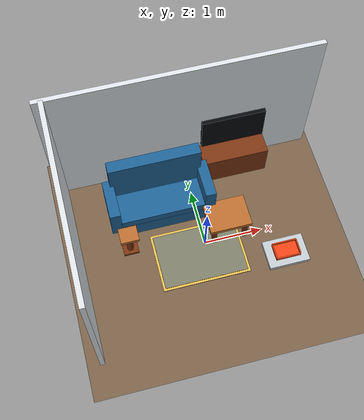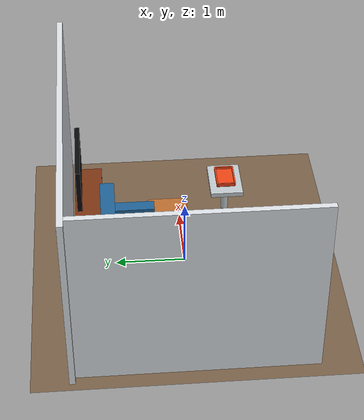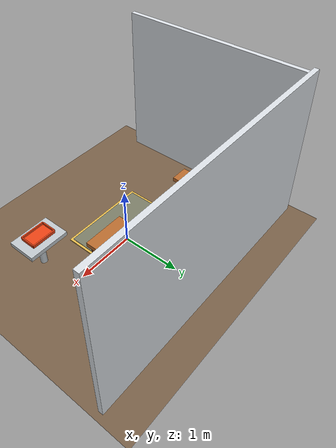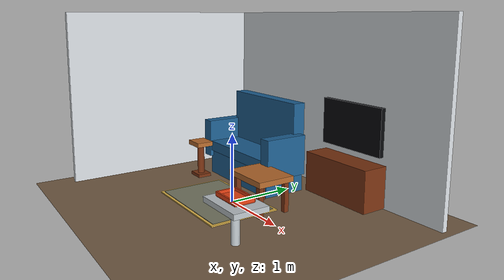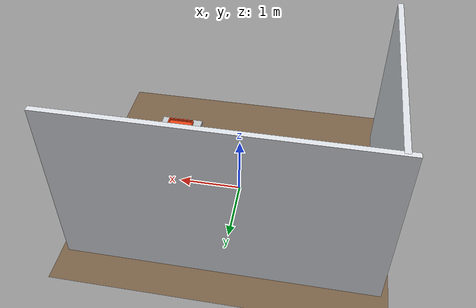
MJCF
<mujoco model="L2 living room region grounding">
  <compiler angle="radian"/>
  <option timestep="0.002" gravity="0 0 -9.81" integrator="implicitfast"/>
  <visual>
    <global offwidth="1280" offheight="960"/>
    <quality shadowsize="4096"/>
    <map znear="0.01" zfar="8"/>
  </visual>
  <default>
    <geom condim="4" friction="1.0 0.03 0.01"/>
    <joint damping="1"/>
  </default>
  <asset>
    <texture name="floor_tex" type="2d" builtin="checker"
             rgb1="0.52 0.42 0.31" rgb2="0.42 0.33 0.25"
             width="512" height="512"/>
    <material name="floor_mat" texture="floor_tex" texrepeat="8 8"
              reflectance="0.04"/>
    <texture name="rug_tex" type="2d" builtin="checker"
             rgb1="0.08 0.25 0.52" rgb2="0.88 0.72 0.28"
             mark="edge" markrgb="0.95 0.86 0.55"
             width="512" height="512"/>
    <material name="rug_mat" texture="rug_tex" texrepeat="6 5"
              reflectance="0.02"/>
    <material name="wood" rgba="0.48 0.20 0.07 1"/>
    <material name="wood_light" rgba="0.72 0.42 0.18 1"/>
    <material name="sofa" rgba="0.12 0.38 0.58 1"/>
    <material name="tray" rgba="0.92 0.26 0.08 1"/>
    <material name="metal" rgba="0.75 0.78 0.80 1"/>
    <material name="tv" rgba="0.025 0.03 0.04 1"/>
    <material name="wall" rgba="0.86 0.88 0.90 1"/>
    <material name="marker" rgba="0.15 0.85 0.30 0.25"/>
  </asset>
  <worldbody>
    <light name="key" pos="-1.5 -1.8 3.8" dir="0.3 0.4 -1"
           directional="true" diffuse="0.85 0.82 0.78"/>
    <light name="fill" pos="1.8 -0.8 2.8" dir="-0.4 0.2 -1"
           directional="true" diffuse="0.58 0.66 0.78"/>
    <light name="north_fill" pos="0 1.6 2.6" dir="0 -0.5 -1"
           diffuse="0.48 0.48 0.42"/>

    <geom name="room_floor" type="plane" size="2.4 2.2 0.05"
          material="floor_mat"/>
    <geom name="north_wall" type="box" pos="0 1.65 1.35"
          size="2.3 0.04 1.35" material="wall"/>
    <geom name="west_wall" type="box" pos="-2.15 0 1.35"
          size="0.04 1.65 1.35" material="wall"/>

    <!-- Clearly visible seating context. -->
    <body name="l2_sofa">
      <geom name="l2_sofa_base" type="box" pos="-0.62 0.82 0.22"
            size="0.78 0.34 0.22" material="sofa"/>
      <geom name="l2_sofa_seat" type="box" pos="-0.62 0.72 0.48"
            size="0.72 0.28 0.08" material="sofa"/>
      <geom name="l2_sofa_back" type="box" pos="-0.62 1.08 0.88"
            size="0.78 0.10 0.48" material="sofa"/>
      <geom name="l2_sofa_left_arm" type="box" pos="-1.43 0.76 0.60"
            size="0.09 0.34 0.30" material="sofa"/>
      <geom name="l2_sofa_right_arm" type="box" pos="0.19 0.76 0.60"
            size="0.09 0.34 0.30" material="sofa"/>
    </body>

    <!-- Geometry-only counterexample: large, planar rug near the sofa. -->
    <body name="l2_rug">
      <geom name="l2_rug_surface" type="box" pos="-0.15 -0.18 0.012"
            size="0.72 0.48 0.012" material="rug_mat"
            contype="0" conaffinity="0"/>
      <geom name="l2_rug_border" type="box" pos="-0.15 -0.18 0.008"
            size="0.76 0.52 0.008" rgba="0.90 0.73 0.30 1"
            contype="0" conaffinity="0"/>
    </body>

    <!-- Semantic-only counterexample: recognizable but undersized end table. -->
    <body name="l2_side_table">
      <geom name="l2_side_table_top" type="box" pos="-1.28 0.20 0.57"
            size="0.155 0.135 0.035" material="wood_light"/>
      <geom name="l2_side_table_leg" type="cylinder" pos="-1.28 0.20 0.29"
            size="0.055 0.25" material="wood"/>
      <geom name="l2_side_table_foot" type="box" pos="-1.28 0.20 0.045"
            size="0.13 0.11 0.025" material="wood"/>
    </body>

    <!-- Correct joint solution: clear coffee-table support patch. -->
    <body name="l2_coffee_table">
      <geom name="l2_coffee_table_top" type="box" pos="0.42 0.20 0.48"
            size="0.36 0.28 0.04" material="wood_light"/>
      <geom name="l2_coffee_leg_fl" type="box" pos="0.15 -0.01 0.23"
            size="0.035 0.035 0.23" material="wood"/>
      <geom name="l2_coffee_leg_fr" type="box" pos="0.69 -0.01 0.23"
            size="0.035 0.035 0.23" material="wood"/>
      <geom name="l2_coffee_leg_bl" type="box" pos="0.15 0.41 0.23"
            size="0.035 0.035 0.23" material="wood"/>
      <geom name="l2_coffee_leg_br" type="box" pos="0.69 0.41 0.23"
            size="0.035 0.035 0.23" material="wood"/>
    </body>

    <!-- Payload staging support is deliberately outside the candidate domain. -->
    <body name="l2_staging_table">
      <geom name="l2_staging_top" type="box" pos="1.16 -0.70 0.50"
            size="0.34 0.24 0.035" material="metal"/>
      <geom name="l2_staging_leg" type="cylinder" pos="1.16 -0.70 0.24"
            size="0.055 0.24" material="metal"/>
    </body>
    <body name="l2_refreshment_tray" pos="1.16 -0.70 0.565">
      <freejoint name="l2_refreshment_tray_free"/>
      <geom name="l2_tray_base" type="box" size="0.205 0.135 0.012"
            material="tray" mass="0.65"/>
      <geom name="l2_tray_north_rim" type="box" pos="0 0.132 0.025"
            size="0.205 0.010 0.025" material="tray" mass="0.04"/>
      <geom name="l2_tray_south_rim" type="box" pos="0 -0.132 0.025"
            size="0.205 0.010 0.025" material="tray" mass="0.04"/>
      <geom name="l2_tray_east_rim" type="box" pos="0.202 0 0.025"
            size="0.010 0.125 0.025" material="tray" mass="0.04"/>
      <geom name="l2_tray_west_rim" type="box" pos="-0.202 0 0.025"
            size="0.010 0.125 0.025" material="tray" mass="0.04"/>
    </body>

    <body name="l2_media_wall">
      <geom name="l2_media_console" type="box" pos="0.85 1.35 0.34"
            size="0.58 0.20 0.30" material="wood"/>
      <geom name="l2_tv_frame" type="box" pos="0.85 1.48 1.10"
            size="0.55 0.035 0.34" material="tv"/>
    </body>

    <!-- Five scene-owned cameras are deterministically repositioned per region. -->
    <camera name="l2_camera_left" pos="-1.2 -1.4 1.4"
            xyaxes="0.8 -0.6 0 0.3 0.4 0.86" fovy="62"/>
    <camera name="l2_camera_right" pos="1.2 -1.4 1.4"
            xyaxes="0.8 0.6 0 -0.3 0.4 0.86" fovy="62"/>
    <camera name="l2_camera_top" pos="0 0 3.4"
            xyaxes="1 0 0 0 1 0" fovy="62"/>
    <camera name="l2_camera_front" pos="0 -1.8 1.1"
            xyaxes="1 0 0 0 0.5 0.866" fovy="62"/>
    <camera name="l2_camera_close" pos="0.7 -1.0 1.2"
            xyaxes="0.8 0.6 0 -0.4 0.53 0.75" fovy="60"/>
  </worldbody>
  <actuator/>
</mujoco>
